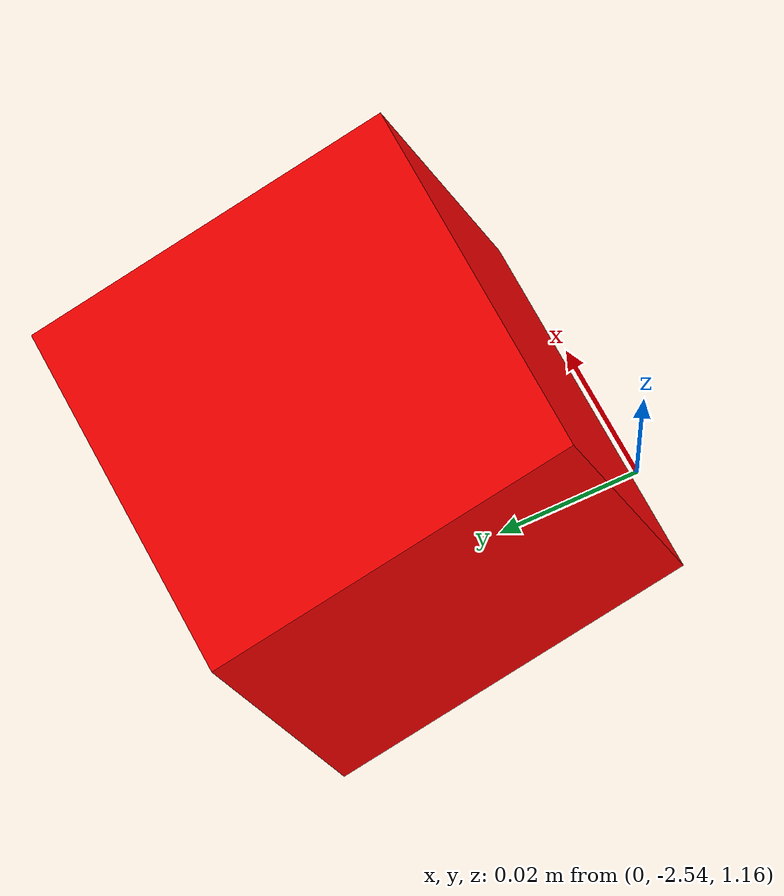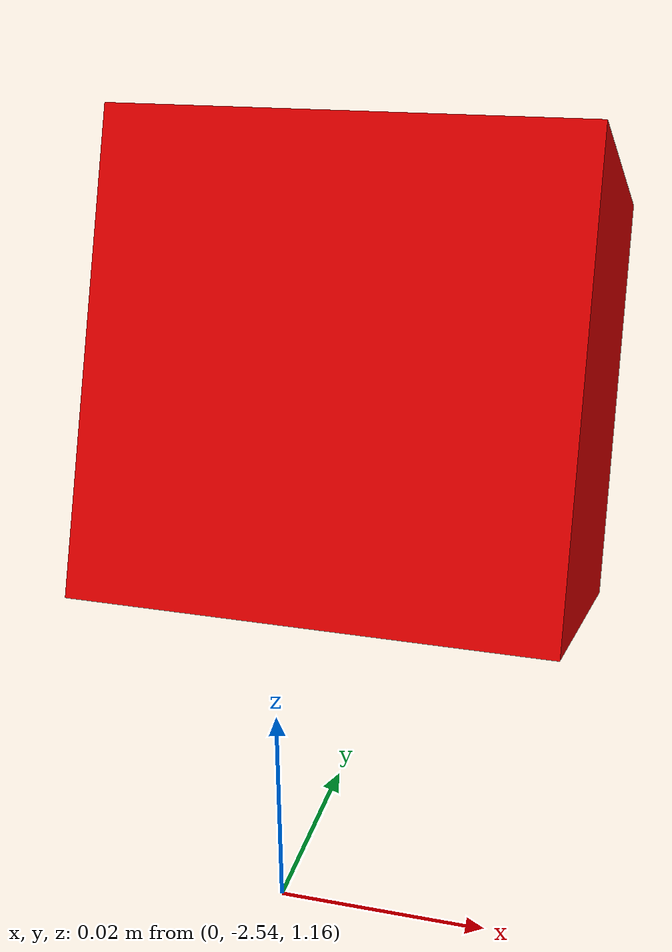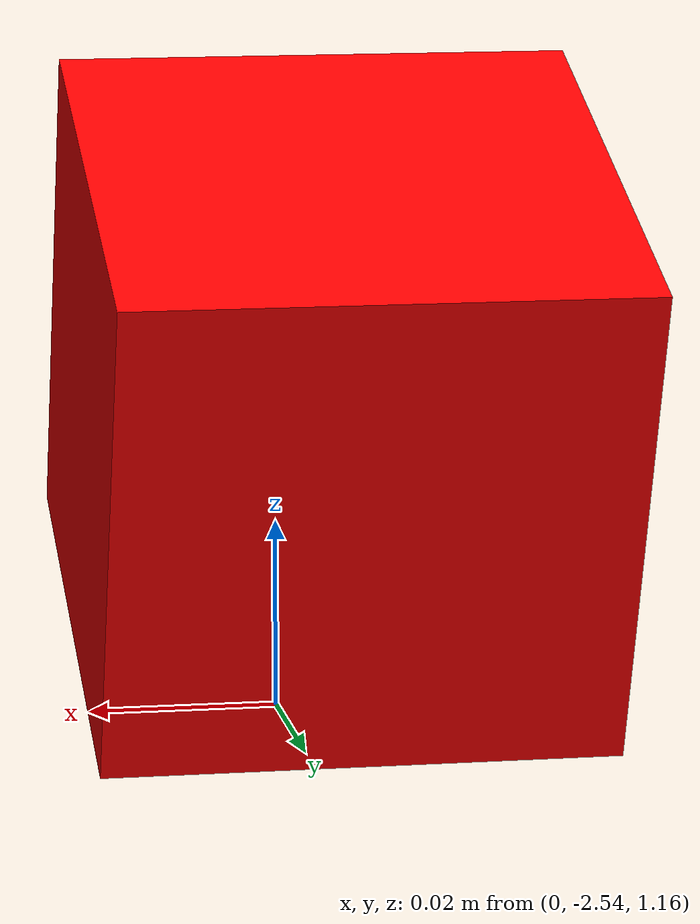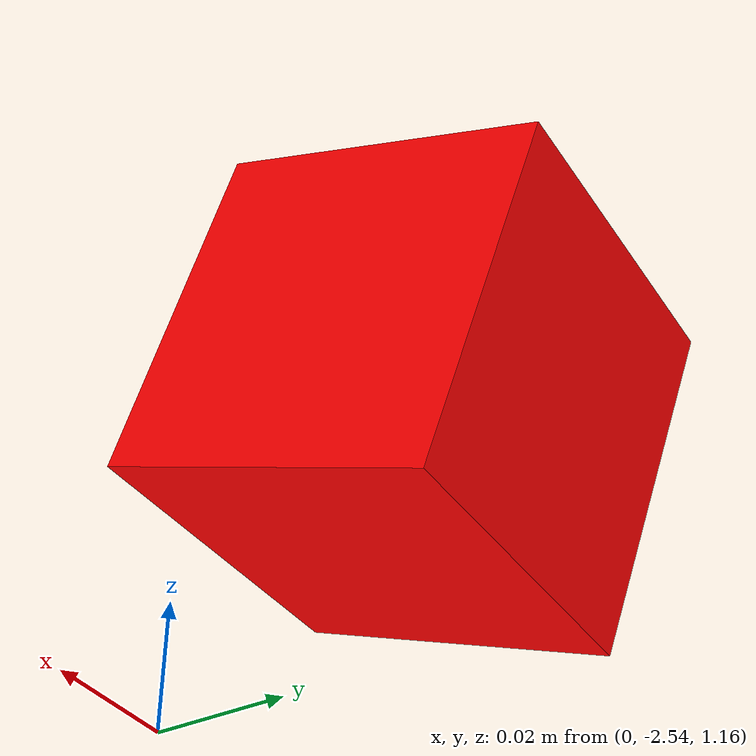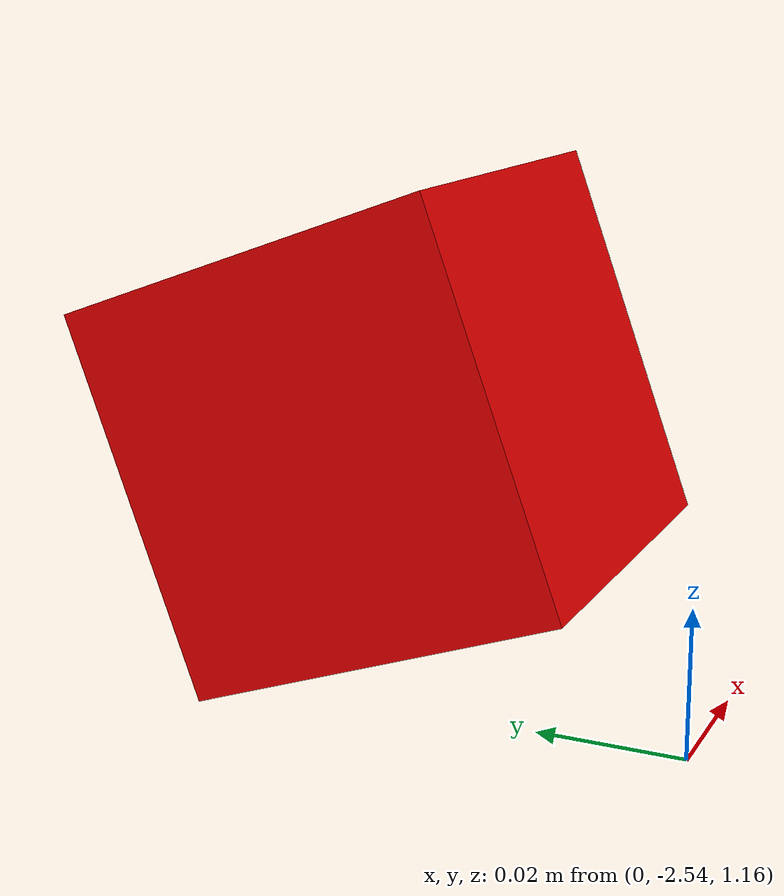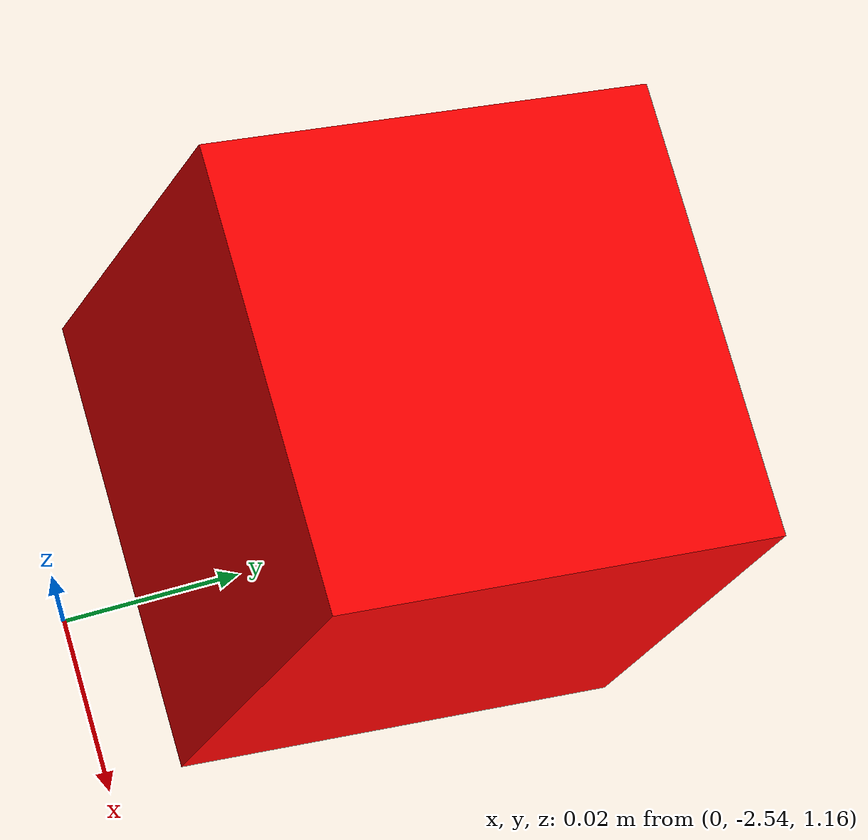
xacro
<?xml version="1.0"?>
<robot xmlns:xacro="http://www.ros.org/wiki/xacro" name="standalone_camera">

  <!-- World Frame Link -->
  <link name="world"/>

  <!-- Fixed Joint positioning the Camera directly facing the Gazebo shapes -->
  <joint name="world_joint" type="fixed">
    <parent link="world"/>
    <child link="camera_link"/>
    <!-- Positioned 2.5m back on Y-axis, 1.2m up on Z-axis, angled downward toward world origin -->
    <origin xyz="0.0 -2.5 1.2" rpy="0.0 0.35 1.5708"/>
  </joint>

  <!-- Physical Camera Box Link -->
  <link name="camera_link">
    <visual>
      <geometry>
        <box size="0.05 0.05 0.05"/>
      </geometry>
      <material name="red">
        <color rgba="1 0 0 1"/>
      </material>
    </visual>
    <collision>
      <geometry>
        <box size="0.05 0.05 0.05"/>
      </geometry>
    </collision>
    <inertial>
      <mass value="0.1"/>
      <origin xyz="0 0 0" rpy="0 0 0"/>
      <inertia ixx="0.0001" ixy="0" ixz="0" iyy="0.0001" iyz="0" izz="0.0001"/>
    </inertial>
  </link>

  <!-- Gazebo ROS Camera Plugin Setup -->
  <gazebo reference="camera_link">
    <sensor type="camera" name="main_camera">
      <update_rate>30.0</update_rate>
      <camera name="head">
        <horizontal_fov>1.3962634</horizontal_fov>
        <image>
          <width>800</width>
          <height>800</height>
          <format>R8G8B8</format>
        </image>
        <clip>
          <near>0.02</near>
          <far>300</far>
        </clip>
      </camera>

      <!-- Plugin node that publishes raw images and metadata to ROS topics -->
      <plugin name="camera_controller" filename="libgazebo_ros_camera.so">
        <alwaysOn>true</alwaysOn>
        <updateRate>0.0</updateRate>
        <cameraName>camera</cameraName>
        <imageTopicName>rgb/image_raw</imageTopicName>
        <cameraInfoTopicName>camera_info</cameraInfoTopicName>
        <frameName>camera_link</frameName>
      </plugin>
    </sensor>
  </gazebo>

</robot>
